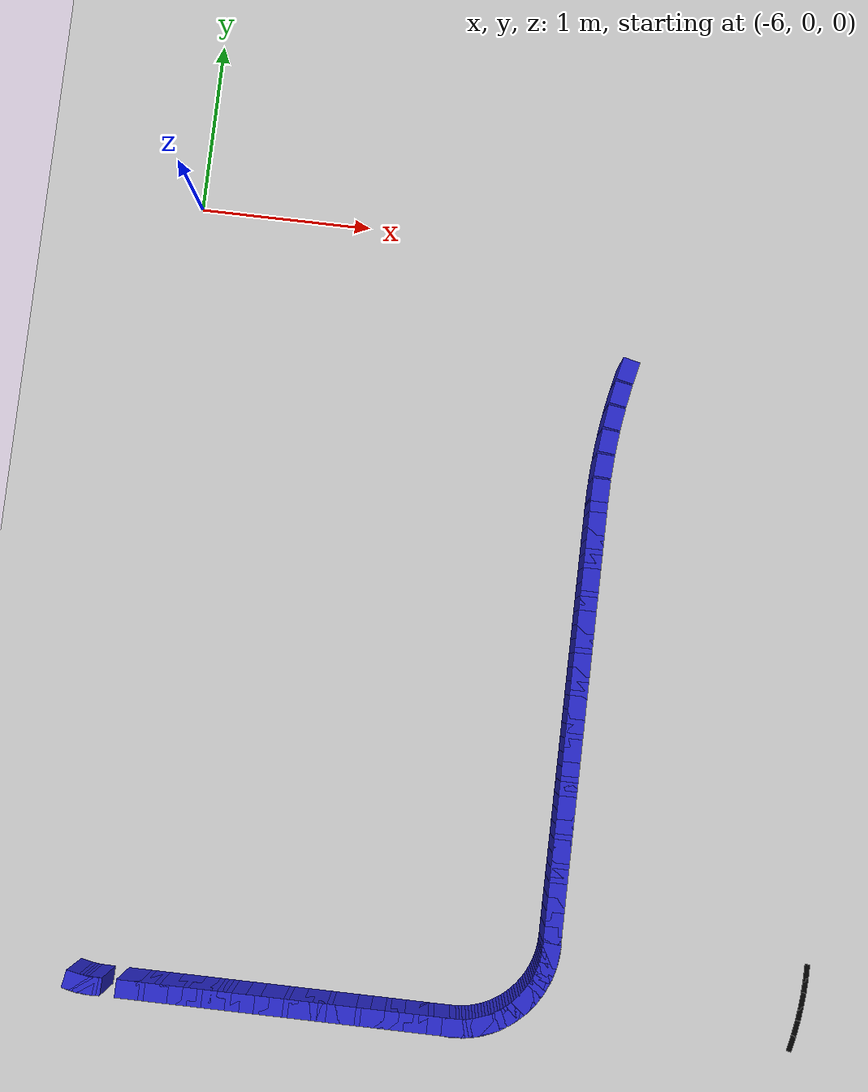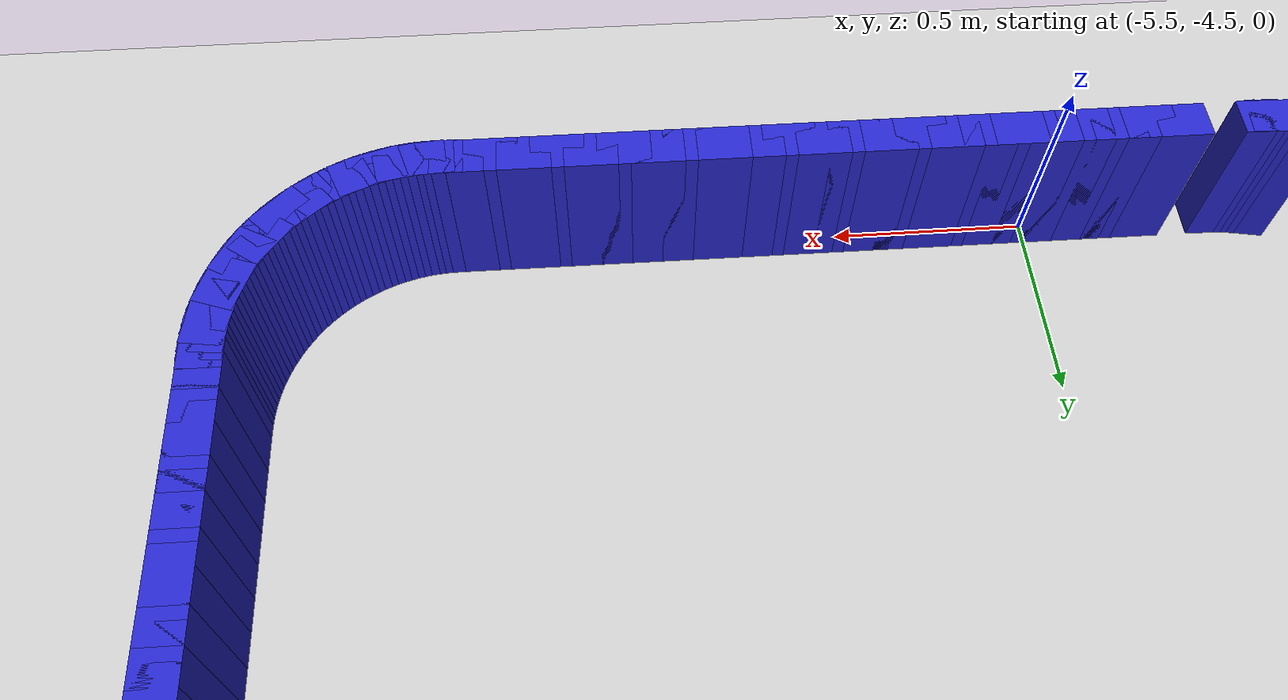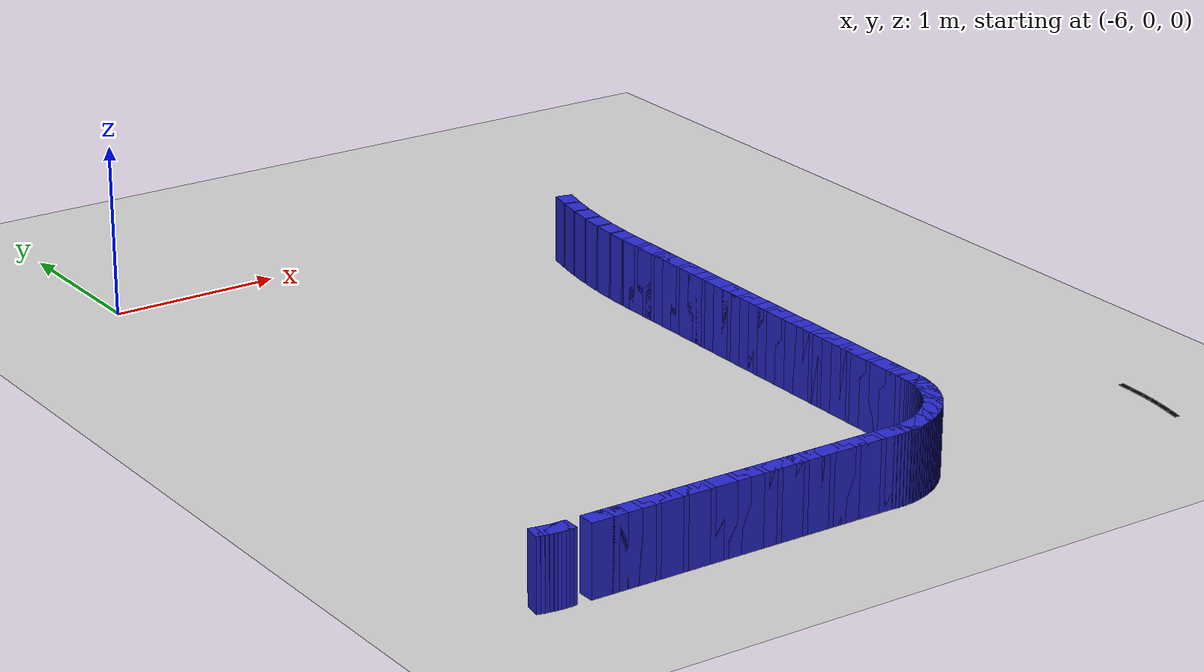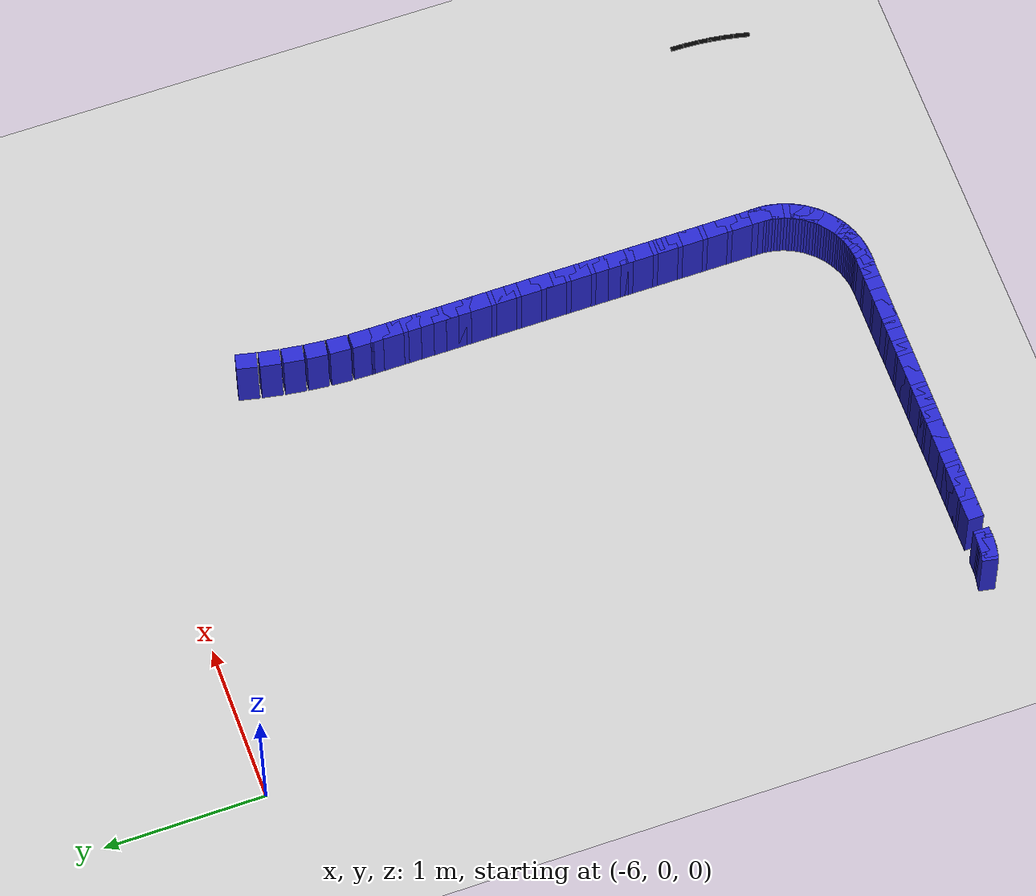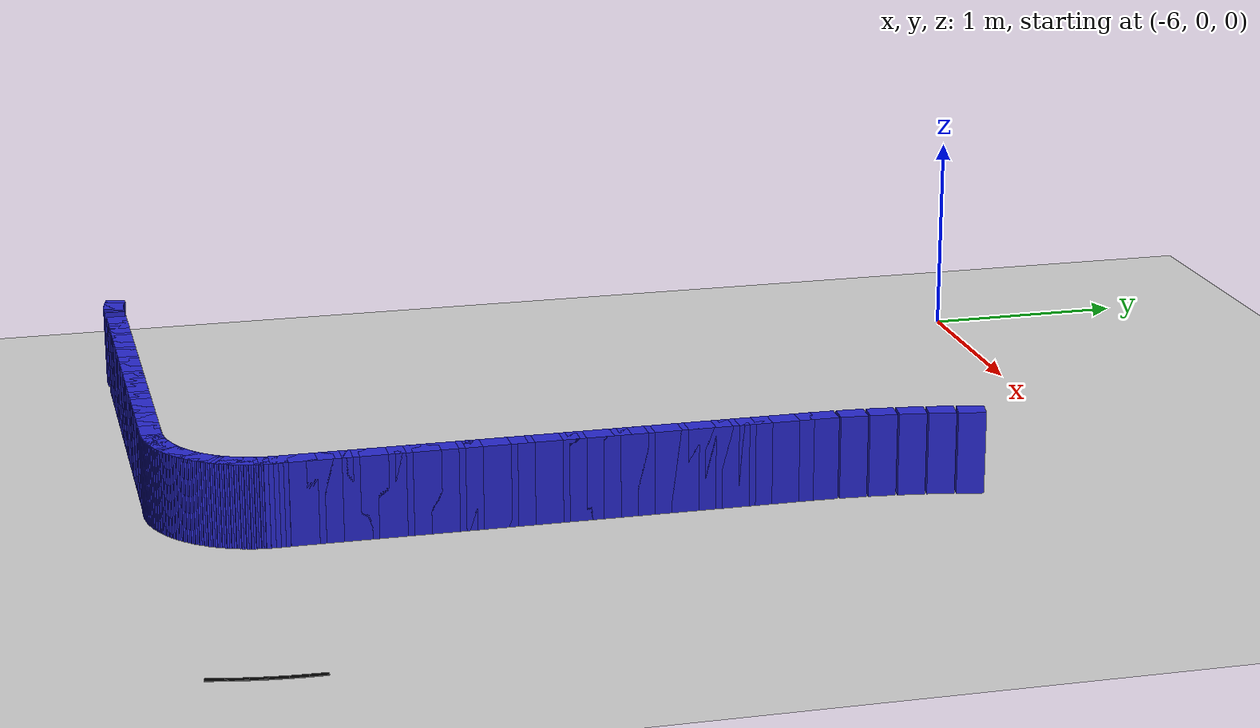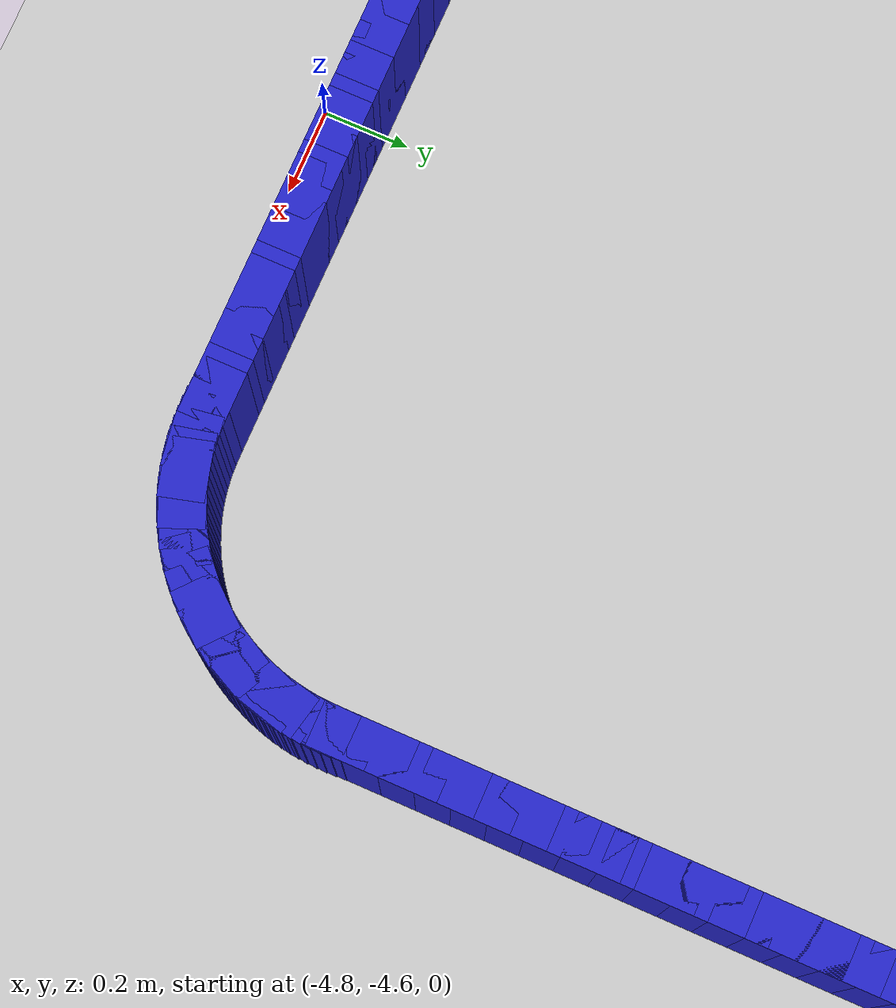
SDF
<sdf version="1.6">
 <world name="new_race_track">
  <include><uri>model://ground_plane</uri></include>
  <include><uri>model://sun</uri></include>
  <model name="iw_84">
   <static>true</static>
   <pose>-6.0901 -4.4914 0.200 0 0 -0.1812</pose>
   <link name="l">
    <collision name="c"><geometry><box><size>0.1305 0.1 0.4</size></box></geometry></collision>
    <visual name="v">
     <geometry><box><size>0.1305 0.1 0.4</size></box></geometry>
     <material><ambient>0.15 0.15 0.8 1</ambient><diffuse>0.15 0.15 0.8 1</diffuse></material>
    </visual>
   </link>
  </model>
  <model name="iw_85">
   <static>true</static>
   <pose>-6.0702 -4.4946 0.200 0 0 -0.1410</pose>
   <link name="l">
    <collision name="c"><geometry><box><size>0.1305 0.1 0.4</size></box></geometry></collision>
    <visual name="v">
     <geometry><box><size>0.1305 0.1 0.4</size></box></geometry>
     <material><ambient>0.15 0.15 0.8 1</ambient><diffuse>0.15 0.15 0.8 1</diffuse></material>
    </visual>
   </link>
  </model>
  <model name="iw_86">
   <static>true</static>
   <pose>-6.0502 -4.4971 0.200 0 0 -0.1007</pose>
   <link name="l">
    <collision name="c"><geometry><box><size>0.1305 0.1 0.4</size></box></geometry></collision>
    <visual name="v">
     <geometry><box><size>0.1305 0.1 0.4</size></box></geometry>
     <material><ambient>0.15 0.15 0.8 1</ambient><diffuse>0.15 0.15 0.8 1</diffuse></material>
    </visual>
   </link>
  </model>
  <model name="iw_87">
   <static>true</static>
   <pose>-6.0302 -4.4987 0.200 0 0 -0.0604</pose>
   <link name="l">
    <collision name="c"><geometry><box><size>0.1305 0.1 0.4</size></box></geometry></collision>
    <visual name="v">
     <geometry><box><size>0.1305 0.1 0.4</size></box></geometry>
     <material><ambient>0.15 0.15 0.8 1</ambient><diffuse>0.15 0.15 0.8 1</diffuse></material>
    </visual>
   </link>
  </model>
  <model name="iw_88">
   <static>true</static>
   <pose>-6.0101 -4.4995 0.200 0 0 -0.0201</pose>
   <link name="l">
    <collision name="c"><geometry><box><size>0.1305 0.1 0.4</size></box></geometry></collision>
    <visual name="v">
     <geometry><box><size>0.1305 0.1 0.4</size></box></geometry>
     <material><ambient>0.15 0.15 0.8 1</ambient><diffuse>0.15 0.15 0.8 1</diffuse></material>
    </visual>
   </link>
  </model>
  <model name="iw_91">
   <static>true</static>
   <pose>-5.8000 -4.5000 0.200 0 0 0.0000</pose>
   <link name="l">
    <collision name="c"><geometry><box><size>0.1300 0.1 0.4</size></box></geometry></collision>
    <visual name="v">
     <geometry><box><size>0.1300 0.1 0.4</size></box></geometry>
     <material><ambient>0.15 0.15 0.8 1</ambient><diffuse>0.15 0.15 0.8 1</diffuse></material>
    </visual>
   </link>
  </model>
  <model name="iw_92">
   <static>true</static>
   <pose>-5.7200 -4.5000 0.200 0 0 0.0000</pose>
   <link name="l">
    <collision name="c"><geometry><box><size>0.1300 0.1 0.4</size></box></geometry></collision>
    <visual name="v">
     <geometry><box><size>0.1300 0.1 0.4</size></box></geometry>
     <material><ambient>0.15 0.15 0.8 1</ambient><diffuse>0.15 0.15 0.8 1</diffuse></material>
    </visual>
   </link>
  </model>
  <model name="iw_93">
   <static>true</static>
   <pose>-5.6400 -4.5000 0.200 0 0 0.0000</pose>
   <link name="l">
    <collision name="c"><geometry><box><size>0.1300 0.1 0.4</size></box></geometry></collision>
    <visual name="v">
     <geometry><box><size>0.1300 0.1 0.4</size></box></geometry>
     <material><ambient>0.15 0.15 0.8 1</ambient><diffuse>0.15 0.15 0.8 1</diffuse></material>
    </visual>
   </link>
  </model>
  <model name="iw_94">
   <static>true</static>
   <pose>-5.5600 -4.5000 0.200 0 0 0.0000</pose>
   <link name="l">
    <collision name="c"><geometry><box><size>0.1300 0.1 0.4</size></box></geometry></collision>
    <visual name="v">
     <geometry><box><size>0.1300 0.1 0.4</size></box></geometry>
     <material><ambient>0.15 0.15 0.8 1</ambient><diffuse>0.15 0.15 0.8 1</diffuse></material>
    </visual>
   </link>
  </model>
  <model name="iw_95">
   <static>true</static>
   <pose>-5.4800 -4.5000 0.200 0 0 0.0000</pose>
   <link name="l">
    <collision name="c"><geometry><box><size>0.1300 0.1 0.4</size></box></geometry></collision>
    <visual name="v">
     <geometry><box><size>0.1300 0.1 0.4</size></box></geometry>
     <material><ambient>0.15 0.15 0.8 1</ambient><diffuse>0.15 0.15 0.8 1</diffuse></material>
    </visual>
   </link>
  </model>
  <model name="iw_96">
   <static>true</static>
   <pose>-5.4000 -4.5000 0.200 0 0 0.0000</pose>
   <link name="l">
    <collision name="c"><geometry><box><size>0.1300 0.1 0.4</size></box></geometry></collision>
    <visual name="v">
     <geometry><box><size>0.1300 0.1 0.4</size></box></geometry>
     <material><ambient>0.15 0.15 0.8 1</ambient><diffuse>0.15 0.15 0.8 1</diffuse></material>
    </visual>
   </link>
  </model>
  <model name="iw_97">
   <static>true</static>
   <pose>-5.3200 -4.5000 0.200 0 0 0.0000</pose>
   <link name="l">
    <collision name="c"><geometry><box><size>0.1300 0.1 0.4</size></box></geometry></collision>
    <visual name="v">
     <geometry><box><size>0.1300 0.1 0.4</size></box></geometry>
     <material><ambient>0.15 0.15 0.8 1</ambient><diffuse>0.15 0.15 0.8 1</diffuse></material>
    </visual>
   </link>
  </model>
  <model name="iw_98">
   <static>true</static>
   <pose>-5.2400 -4.5000 0.200 0 0 0.0000</pose>
   <link name="l">
    <collision name="c"><geometry><box><size>0.1300 0.1 0.4</size></box></geometry></collision>
    <visual name="v">
     <geometry><box><size>0.1300 0.1 0.4</size></box></geometry>
     <material><ambient>0.15 0.15 0.8 1</ambient><diffuse>0.15 0.15 0.8 1</diffuse></material>
    </visual>
   </link>
  </model>
  <model name="iw_99">
   <static>true</static>
   <pose>-5.1600 -4.5000 0.200 0 0 0.0000</pose>
   <link name="l">
    <collision name="c"><geometry><box><size>0.1300 0.1 0.4</size></box></geometry></collision>
    <visual name="v">
     <geometry><box><size>0.1300 0.1 0.4</size></box></geometry>
     <material><ambient>0.15 0.15 0.8 1</ambient><diffuse>0.15 0.15 0.8 1</diffuse></material>
    </visual>
   </link>
  </model>
  <model name="iw_100">
   <static>true</static>
   <pose>-5.0800 -4.5000 0.200 0 0 0.0000</pose>
   <link name="l">
    <collision name="c"><geometry><box><size>0.1300 0.1 0.4</size></box></geometry></collision>
    <visual name="v">
     <geometry><box><size>0.1300 0.1 0.4</size></box></geometry>
     <material><ambient>0.15 0.15 0.8 1</ambient><diffuse>0.15 0.15 0.8 1</diffuse></material>
    </visual>
   </link>
  </model>
  <model name="iw_101">
   <static>true</static>
   <pose>-5.0000 -4.5000 0.200 0 0 0.0000</pose>
   <link name="l">
    <collision name="c"><geometry><box><size>0.1300 0.1 0.4</size></box></geometry></collision>
    <visual name="v">
     <geometry><box><size>0.1300 0.1 0.4</size></box></geometry>
     <material><ambient>0.15 0.15 0.8 1</ambient><diffuse>0.15 0.15 0.8 1</diffuse></material>
    </visual>
   </link>
  </model>
  <model name="iw_102">
   <static>true</static>
   <pose>-4.9200 -4.5000 0.200 0 0 0.0000</pose>
   <link name="l">
    <collision name="c"><geometry><box><size>0.1300 0.1 0.4</size></box></geometry></collision>
    <visual name="v">
     <geometry><box><size>0.1300 0.1 0.4</size></box></geometry>
     <material><ambient>0.15 0.15 0.8 1</ambient><diffuse>0.15 0.15 0.8 1</diffuse></material>
    </visual>
   </link>
  </model>
  <model name="iw_103">
   <static>true</static>
   <pose>-4.8400 -4.5000 0.200 0 0 0.0000</pose>
   <link name="l">
    <collision name="c"><geometry><box><size>0.1300 0.1 0.4</size></box></geometry></collision>
    <visual name="v">
     <geometry><box><size>0.1300 0.1 0.4</size></box></geometry>
     <material><ambient>0.15 0.15 0.8 1</ambient><diffuse>0.15 0.15 0.8 1</diffuse></material>
    </visual>
   </link>
  </model>
  <model name="iw_104">
   <static>true</static>
   <pose>-4.7600 -4.5000 0.200 0 0 0.0000</pose>
   <link name="l">
    <collision name="c"><geometry><box><size>0.1300 0.1 0.4</size></box></geometry></collision>
    <visual name="v">
     <geometry><box><size>0.1300 0.1 0.4</size></box></geometry>
     <material><ambient>0.15 0.15 0.8 1</ambient><diffuse>0.15 0.15 0.8 1</diffuse></material>
    </visual>
   </link>
  </model>
  <model name="iw_105">
   <static>true</static>
   <pose>-4.6800 -4.5000 0.200 0 0 0.0000</pose>
   <link name="l">
    <collision name="c"><geometry><box><size>0.1300 0.1 0.4</size></box></geometry></collision>
    <visual name="v">
     <geometry><box><size>0.1300 0.1 0.4</size></box></geometry>
     <material><ambient>0.15 0.15 0.8 1</ambient><diffuse>0.15 0.15 0.8 1</diffuse></material>
    </visual>
   </link>
  </model>
  <model name="iw_106">
   <static>true</static>
   <pose>-4.6000 -4.5000 0.200 0 0 0.0000</pose>
   <link name="l">
    <collision name="c"><geometry><box><size>0.1300 0.1 0.4</size></box></geometry></collision>
    <visual name="v">
     <geometry><box><size>0.1300 0.1 0.4</size></box></geometry>
     <material><ambient>0.15 0.15 0.8 1</ambient><diffuse>0.15 0.15 0.8 1</diffuse></material>
    </visual>
   </link>
  </model>
  <model name="iw_107">
   <static>true</static>
   <pose>-4.5200 -4.5000 0.200 0 0 0.0000</pose>
   <link name="l">
    <collision name="c"><geometry><box><size>0.1300 0.1 0.4</size></box></geometry></collision>
    <visual name="v">
     <geometry><box><size>0.1300 0.1 0.4</size></box></geometry>
     <material><ambient>0.15 0.15 0.8 1</ambient><diffuse>0.15 0.15 0.8 1</diffuse></material>
    </visual>
   </link>
  </model>
  <model name="iw_108">
   <static>true</static>
   <pose>-4.4400 -4.5000 0.200 0 0 0.0000</pose>
   <link name="l">
    <collision name="c"><geometry><box><size>0.1300 0.1 0.4</size></box></geometry></collision>
    <visual name="v">
     <geometry><box><size>0.1300 0.1 0.4</size></box></geometry>
     <material><ambient>0.15 0.15 0.8 1</ambient><diffuse>0.15 0.15 0.8 1</diffuse></material>
    </visual>
   </link>
  </model>
  <model name="iw_109">
   <static>true</static>
   <pose>-4.3600 -4.5000 0.200 0 0 0.0000</pose>
   <link name="l">
    <collision name="c"><geometry><box><size>0.1300 0.1 0.4</size></box></geometry></collision>
    <visual name="v">
     <geometry><box><size>0.1300 0.1 0.4</size></box></geometry>
     <material><ambient>0.15 0.15 0.8 1</ambient><diffuse>0.15 0.15 0.8 1</diffuse></material>
    </visual>
   </link>
  </model>
  <model name="iw_110">
   <static>true</static>
   <pose>-4.2800 -4.5000 0.200 0 0 0.0000</pose>
   <link name="l">
    <collision name="c"><geometry><box><size>0.1300 0.1 0.4</size></box></geometry></collision>
    <visual name="v">
     <geometry><box><size>0.1300 0.1 0.4</size></box></geometry>
     <material><ambient>0.15 0.15 0.8 1</ambient><diffuse>0.15 0.15 0.8 1</diffuse></material>
    </visual>
   </link>
  </model>
  <model name="iw_111">
   <static>true</static>
   <pose>-4.2000 -4.5000 0.200 0 0 0.0000</pose>
   <link name="l">
    <collision name="c"><geometry><box><size>0.1300 0.1 0.4</size></box></geometry></collision>
    <visual name="v">
     <geometry><box><size>0.1300 0.1 0.4</size></box></geometry>
     <material><ambient>0.15 0.15 0.8 1</ambient><diffuse>0.15 0.15 0.8 1</diffuse></material>
    </visual>
   </link>
  </model>
  <model name="iw_112">
   <static>true</static>
   <pose>-4.1200 -4.5000 0.200 0 0 0.0000</pose>
   <link name="l">
    <collision name="c"><geometry><box><size>0.1300 0.1 0.4</size></box></geometry></collision>
    <visual name="v">
     <geometry><box><size>0.1300 0.1 0.4</size></box></geometry>
     <material><ambient>0.15 0.15 0.8 1</ambient><diffuse>0.15 0.15 0.8 1</diffuse></material>
    </visual>
   </link>
  </model>
  <model name="iw_113">
   <static>true</static>
   <pose>-4.0400 -4.5000 0.200 0 0 0.0000</pose>
   <link name="l">
    <collision name="c"><geometry><box><size>0.1300 0.1 0.4</size></box></geometry></collision>
    <visual name="v">
     <geometry><box><size>0.1300 0.1 0.4</size></box></geometry>
     <material><ambient>0.15 0.15 0.8 1</ambient><diffuse>0.15 0.15 0.8 1</diffuse></material>
    </visual>
   </link>
  </model>
  <model name="iw_114">
   <static>true</static>
   <pose>-3.9899 -4.4995 0.200 0 0 0.0201</pose>
   <link name="l">
    <collision name="c"><geometry><box><size>0.1305 0.1 0.4</size></box></geometry></collision>
    <visual name="v">
     <geometry><box><size>0.1305 0.1 0.4</size></box></geometry>
     <material><ambient>0.15 0.15 0.8 1</ambient><diffuse>0.15 0.15 0.8 1</diffuse></material>
    </visual>
   </link>
  </model>
  <model name="iw_115">
   <static>true</static>
   <pose>-3.9698 -4.4987 0.200 0 0 0.0604</pose>
   <link name="l">
    <collision name="c"><geometry><box><size>0.1305 0.1 0.4</size></box></geometry></collision>
    <visual name="v">
     <geometry><box><size>0.1305 0.1 0.4</size></box></geometry>
     <material><ambient>0.15 0.15 0.8 1</ambient><diffuse>0.15 0.15 0.8 1</diffuse></material>
    </visual>
   </link>
  </model>
  <model name="iw_116">
   <static>true</static>
   <pose>-3.9498 -4.4971 0.200 0 0 0.1007</pose>
   <link name="l">
    <collision name="c"><geometry><box><size>0.1305 0.1 0.4</size></box></geometry></collision>
    <visual name="v">
     <geometry><box><size>0.1305 0.1 0.4</size></box></geometry>
     <material><ambient>0.15 0.15 0.8 1</ambient><diffuse>0.15 0.15 0.8 1</diffuse></material>
    </visual>
   </link>
  </model>
  <model name="iw_117">
   <static>true</static>
   <pose>-3.9298 -4.4946 0.200 0 0 0.1410</pose>
   <link name="l">
    <collision name="c"><geometry><box><size>0.1305 0.1 0.4</size></box></geometry></collision>
    <visual name="v">
     <geometry><box><size>0.1305 0.1 0.4</size></box></geometry>
     <material><ambient>0.15 0.15 0.8 1</ambient><diffuse>0.15 0.15 0.8 1</diffuse></material>
    </visual>
   </link>
  </model>
  <model name="iw_118">
   <static>true</static>
   <pose>-3.9099 -4.4914 0.200 0 0 0.1812</pose>
   <link name="l">
    <collision name="c"><geometry><box><size>0.1305 0.1 0.4</size></box></geometry></collision>
    <visual name="v">
     <geometry><box><size>0.1305 0.1 0.4</size></box></geometry>
     <material><ambient>0.15 0.15 0.8 1</ambient><diffuse>0.15 0.15 0.8 1</diffuse></material>
    </visual>
   </link>
  </model>
  <model name="iw_119">
   <static>true</static>
   <pose>-3.8902 -4.4874 0.200 0 0 0.2215</pose>
   <link name="l">
    <collision name="c"><geometry><box><size>0.1305 0.1 0.4</size></box></geometry></collision>
    <visual name="v">
     <geometry><box><size>0.1305 0.1 0.4</size></box></geometry>
     <material><ambient>0.15 0.15 0.8 1</ambient><diffuse>0.15 0.15 0.8 1</diffuse></material>
    </visual>
   </link>
  </model>
  <model name="iw_120">
   <static>true</static>
   <pose>-3.8707 -4.4826 0.200 0 0 0.2618</pose>
   <link name="l">
    <collision name="c"><geometry><box><size>0.1305 0.1 0.4</size></box></geometry></collision>
    <visual name="v">
     <geometry><box><size>0.1305 0.1 0.4</size></box></geometry>
     <material><ambient>0.15 0.15 0.8 1</ambient><diffuse>0.15 0.15 0.8 1</diffuse></material>
    </visual>
   </link>
  </model>
  <model name="iw_121">
   <static>true</static>
   <pose>-3.8514 -4.4770 0.200 0 0 0.3021</pose>
   <link name="l">
    <collision name="c"><geometry><box><size>0.1305 0.1 0.4</size></box></geometry></collision>
    <visual name="v">
     <geometry><box><size>0.1305 0.1 0.4</size></box></geometry>
     <material><ambient>0.15 0.15 0.8 1</ambient><diffuse>0.15 0.15 0.8 1</diffuse></material>
    </visual>
   </link>
  </model>
  <model name="iw_122">
   <static>true</static>
   <pose>-3.8323 -4.4706 0.200 0 0 0.3424</pose>
   <link name="l">
    <collision name="c"><geometry><box><size>0.1305 0.1 0.4</size></box></geometry></collision>
    <visual name="v">
     <geometry><box><size>0.1305 0.1 0.4</size></box></geometry>
     <material><ambient>0.15 0.15 0.8 1</ambient><diffuse>0.15 0.15 0.8 1</diffuse></material>
    </visual>
   </link>
  </model>
  <model name="iw_123">
   <static>true</static>
   <pose>-3.8135 -4.4635 0.200 0 0 0.3826</pose>
   <link name="l">
    <collision name="c"><geometry><box><size>0.1305 0.1 0.4</size></box></geometry></collision>
    <visual name="v">
     <geometry><box><size>0.1305 0.1 0.4</size></box></geometry>
     <material><ambient>0.15 0.15 0.8 1</ambient><diffuse>0.15 0.15 0.8 1</diffuse></material>
    </visual>
   </link>
  </model>
  <model name="iw_124">
   <static>true</static>
   <pose>-3.7950 -4.4556 0.200 0 0 0.4229</pose>
   <link name="l">
    <collision name="c"><geometry><box><size>0.1305 0.1 0.4</size></box></geometry></collision>
    <visual name="v">
     <geometry><box><size>0.1305 0.1 0.4</size></box></geometry>
     <material><ambient>0.15 0.15 0.8 1</ambient><diffuse>0.15 0.15 0.8 1</diffuse></material>
    </visual>
   </link>
  </model>
  <model name="iw_125">
   <static>true</static>
   <pose>-3.7768 -4.4470 0.200 0 0 0.4632</pose>
   <link name="l">
    <collision name="c"><geometry><box><size>0.1305 0.1 0.4</size></box></geometry></collision>
    <visual name="v">
     <geometry><box><size>0.1305 0.1 0.4</size></box></geometry>
     <material><ambient>0.15 0.15 0.8 1</ambient><diffuse>0.15 0.15 0.8 1</diffuse></material>
    </visual>
   </link>
  </model>
  <model name="iw_126">
   <static>true</static>
   <pose>-3.7590 -4.4376 0.200 0 0 0.5035</pose>
   <link name="l">
    <collision name="c"><geometry><box><size>0.1305 0.1 0.4</size></box></geometry></collision>
    <visual name="v">
     <geometry><box><size>0.1305 0.1 0.4</size></box></geometry>
     <material><ambient>0.15 0.15 0.8 1</ambient><diffuse>0.15 0.15 0.8 1</diffuse></material>
    </visual>
   </link>
  </model>
  <model name="iw_127">
   <static>true</static>
   <pose>-3.7415 -4.4275 0.200 0 0 0.5437</pose>
   <link name="l">
    <collision name="c"><geometry><box><size>0.1305 0.1 0.4</size></box></geometry></collision>
    <visual name="v">
     <geometry><box><size>0.1305 0.1 0.4</size></box></geometry>
     <material><ambient>0.15 0.15 0.8 1</ambient><diffuse>0.15 0.15 0.8 1</diffuse></material>
    </visual>
   </link>
  </model>
  <model name="iw_128">
   <static>true</static>
   <pose>-3.7245 -4.4168 0.200 0 0 0.5840</pose>
   <link name="l">
    <collision name="c"><geometry><box><size>0.1305 0.1 0.4</size></box></geometry></collision>
    <visual name="v">
     <geometry><box><size>0.1305 0.1 0.4</size></box></geometry>
     <material><ambient>0.15 0.15 0.8 1</ambient><diffuse>0.15 0.15 0.8 1</diffuse></material>
    </visual>
   </link>
  </model>
  <model name="iw_129">
   <static>true</static>
   <pose>-3.7080 -4.4054 0.200 0 0 0.6243</pose>
   <link name="l">
    <collision name="c"><geometry><box><size>0.1305 0.1 0.4</size></box></geometry></collision>
    <visual name="v">
     <geometry><box><size>0.1305 0.1 0.4</size></box></geometry>
     <material><ambient>0.15 0.15 0.8 1</ambient><diffuse>0.15 0.15 0.8 1</diffuse></material>
    </visual>
   </link>
  </model>
  <model name="iw_130">
   <static>true</static>
   <pose>-3.6919 -4.3933 0.200 0 0 0.6646</pose>
   <link name="l">
    <collision name="c"><geometry><box><size>0.1305 0.1 0.4</size></box></geometry></collision>
    <visual name="v">
     <geometry><box><size>0.1305 0.1 0.4</size></box></geometry>
     <material><ambient>0.15 0.15 0.8 1</ambient><diffuse>0.15 0.15 0.8 1</diffuse></material>
    </visual>
   </link>
  </model>
  <model name="iw_131">
   <static>true</static>
   <pose>-3.6763 -4.3805 0.200 0 0 0.7048</pose>
   <link name="l">
    <collision name="c"><geometry><box><size>0.1305 0.1 0.4</size></box></geometry></collision>
    <visual name="v">
     <geometry><box><size>0.1305 0.1 0.4</size></box></geometry>
     <material><ambient>0.15 0.15 0.8 1</ambient><diffuse>0.15 0.15 0.8 1</diffuse></material>
    </visual>
   </link>
  </model>
  <model name="iw_132">
   <static>true</static>
   <pose>-3.6612 -4.3672 0.200 0 0 0.7451</pose>
   <link name="l">
    <collision name="c"><geometry><box><size>0.1305 0.1 0.4</size></box></geometry></collision>
    <visual name="v">
     <geometry><box><size>0.1305 0.1 0.4</size></box></geometry>
     <material><ambient>0.15 0.15 0.8 1</ambient><diffuse>0.15 0.15 0.8 1</diffuse></material>
    </visual>
   </link>
  </model>
  <model name="iw_133">
   <static>true</static>
   <pose>-3.6467 -4.3533 0.200 0 0 0.7854</pose>
   <link name="l">
    <collision name="c"><geometry><box><size>0.1305 0.1 0.4</size></box></geometry></collision>
    <visual name="v">
     <geometry><box><size>0.1305 0.1 0.4</size></box></geometry>
     <material><ambient>0.15 0.15 0.8 1</ambient><diffuse>0.15 0.15 0.8 1</diffuse></material>
    </visual>
   </link>
  </model>
  <model name="iw_134">
   <static>true</static>
   <pose>-3.6328 -4.3388 0.200 0 0 0.8257</pose>
   <link name="l">
    <collision name="c"><geometry><box><size>0.1305 0.1 0.4</size></box></geometry></collision>
    <visual name="v">
     <geometry><box><size>0.1305 0.1 0.4</size></box></geometry>
     <material><ambient>0.15 0.15 0.8 1</ambient><diffuse>0.15 0.15 0.8 1</diffuse></material>
    </visual>
   </link>
  </model>
  <model name="iw_135">
   <static>true</static>
   <pose>-3.6195 -4.3237 0.200 0 0 0.8660</pose>
   <link name="l">
    <collision name="c"><geometry><box><size>0.1305 0.1 0.4</size></box></geometry></collision>
    <visual name="v">
     <geometry><box><size>0.1305 0.1 0.4</size></box></geometry>
     <material><ambient>0.15 0.15 0.8 1</ambient><diffuse>0.15 0.15 0.8 1</diffuse></material>
    </visual>
   </link>
  </model>
  <model name="iw_136">
   <static>true</static>
   <pose>-3.6067 -4.3081 0.200 0 0 0.9062</pose>
   <link name="l">
    <collision name="c"><geometry><box><size>0.1305 0.1 0.4</size></box></geometry></collision>
    <visual name="v">
     <geometry><box><size>0.1305 0.1 0.4</size></box></geometry>
     <material><ambient>0.15 0.15 0.8 1</ambient><diffuse>0.15 0.15 0.8 1</diffuse></material>
    </visual>
   </link>
  </model>
  <model name="iw_137">
   <static>true</static>
   <pose>-3.5946 -4.2920 0.200 0 0 0.9465</pose>
   <link name="l">
    <collision name="c"><geometry><box><size>0.1305 0.1 0.4</size></box></geometry></collision>
    <visual name="v">
     <geometry><box><size>0.1305 0.1 0.4</size></box></geometry>
     <material><ambient>0.15 0.15 0.8 1</ambient><diffuse>0.15 0.15 0.8 1</diffuse></material>
    </visual>
   </link>
  </model>
  <model name="iw_138">
   <static>true</static>
   <pose>-3.5832 -4.2755 0.200 0 0 0.9868</pose>
   <link name="l">
    <collision name="c"><geometry><box><size>0.1305 0.1 0.4</size></box></geometry></collision>
    <visual name="v">
     <geometry><box><size>0.1305 0.1 0.4</size></box></geometry>
     <material><ambient>0.15 0.15 0.8 1</ambient><diffuse>0.15 0.15 0.8 1</diffuse></material>
    </visual>
   </link>
  </model>
  <model name="iw_139">
   <static>true</static>
   <pose>-3.5725 -4.2585 0.200 0 0 1.0271</pose>
   <link name="l">
    <collision name="c"><geometry><box><size>0.1305 0.1 0.4</size></box></geometry></collision>
    <visual name="v">
     <geometry><box><size>0.1305 0.1 0.4</size></box></geometry>
     <material><ambient>0.15 0.15 0.8 1</ambient><diffuse>0.15 0.15 0.8 1</diffuse></material>
    </visual>
   </link>
  </model>
  <model name="iw_140">
   <static>true</static>
   <pose>-3.5624 -4.2410 0.200 0 0 1.0673</pose>
   <link name="l">
    <collision name="c"><geometry><box><size>0.1305 0.1 0.4</size></box></geometry></collision>
    <visual name="v">
     <geometry><box><size>0.1305 0.1 0.4</size></box></geometry>
     <material><ambient>0.15 0.15 0.8 1</ambient><diffuse>0.15 0.15 0.8 1</diffuse></material>
    </visual>
   </link>
  </model>
  <model name="iw_141">
   <static>true</static>
   <pose>-3.5530 -4.2232 0.200 0 0 1.1076</pose>
   <link name="l">
    <collision name="c"><geometry><box><size>0.1305 0.1 0.4</size></box></geometry></collision>
    <visual name="v">
     <geometry><box><size>0.1305 0.1 0.4</size></box></geometry>
     <material><ambient>0.15 0.15 0.8 1</ambient><diffuse>0.15 0.15 0.8 1</diffuse></material>
    </visual>
   </link>
  </model>
  <model name="iw_142">
   <static>true</static>
   <pose>-3.5444 -4.2050 0.200 0 0 1.1479</pose>
   <link name="l">
    <collision name="c"><geometry><box><size>0.1305 0.1 0.4</size></box></geometry></collision>
    <visual name="v">
     <geometry><box><size>0.1305 0.1 0.4</size></box></geometry>
     <material><ambient>0.15 0.15 0.8 1</ambient><diffuse>0.15 0.15 0.8 1</diffuse></material>
    </visual>
   </link>
  </model>
  <model name="iw_143">
   <static>true</static>
   <pose>-3.5365 -4.1865 0.200 0 0 1.1882</pose>
   <link name="l">
    <collision name="c"><geometry><box><size>0.1305 0.1 0.4</size></box></geometry></collision>
    <visual name="v">
     <geometry><box><size>0.1305 0.1 0.4</size></box></geometry>
     <material><ambient>0.15 0.15 0.8 1</ambient><diffuse>0.15 0.15 0.8 1</diffuse></material>
    </visual>
   </link>
  </model>
  <model name="iw_144">
   <static>true</static>
   <pose>-3.5294 -4.1677 0.200 0 0 1.2284</pose>
   <link name="l">
    <collision name="c"><geometry><box><size>0.1305 0.1 0.4</size></box></geometry></collision>
    <visual name="v">
     <geometry><box><size>0.1305 0.1 0.4</size></box></geometry>
     <material><ambient>0.15 0.15 0.8 1</ambient><diffuse>0.15 0.15 0.8 1</diffuse></material>
    </visual>
   </link>
  </model>
  <model name="iw_145">
   <static>true</static>
   <pose>-3.5230 -4.1486 0.200 0 0 1.2687</pose>
   <link name="l">
    <collision name="c"><geometry><box><size>0.1305 0.1 0.4</size></box></geometry></collision>
    <visual name="v">
     <geometry><box><size>0.1305 0.1 0.4</size></box></geometry>
     <material><ambient>0.15 0.15 0.8 1</ambient><diffuse>0.15 0.15 0.8 1</diffuse></material>
    </visual>
   </link>
  </model>
  <model name="iw_146">
   <static>true</static>
   <pose>-3.5174 -4.1293 0.200 0 0 1.3090</pose>
   <link name="l">
    <collision name="c"><geometry><box><size>0.1305 0.1 0.4</size></box></geometry></collision>
    <visual name="v">
     <geometry><box><size>0.1305 0.1 0.4</size></box></geometry>
     <material><ambient>0.15 0.15 0.8 1</ambient><diffuse>0.15 0.15 0.8 1</diffuse></material>
    </visual>
   </link>
  </model>
  <model name="iw_147">
   <static>true</static>
   <pose>-3.5126 -4.1098 0.200 0 0 1.3493</pose>
   <link name="l">
    <collision name="c"><geometry><box><size>0.1305 0.1 0.4</size></box></geometry></collision>
    <visual name="v">
     <geometry><box><size>0.1305 0.1 0.4</size></box></geometry>
     <material><ambient>0.15 0.15 0.8 1</ambient><diffuse>0.15 0.15 0.8 1</diffuse></material>
    </visual>
   </link>
  </model>
  <model name="iw_148">
   <static>true</static>
   <pose>-3.5086 -4.0901 0.200 0 0 1.3896</pose>
   <link name="l">
    <collision name="c"><geometry><box><size>0.1305 0.1 0.4</size></box></geometry></collision>
    <visual name="v">
     <geometry><box><size>0.1305 0.1 0.4</size></box></geometry>
     <material><ambient>0.15 0.15 0.8 1</ambient><diffuse>0.15 0.15 0.8 1</diffuse></material>
    </visual>
   </link>
  </model>
  <model name="iw_149">
   <static>true</static>
   <pose>-3.5054 -4.0702 0.200 0 0 1.4298</pose>
   <link name="l">
    <collision name="c"><geometry><box><size>0.1305 0.1 0.4</size></box></geometry></collision>
    <visual name="v">
     <geometry><box><size>0.1305 0.1 0.4</size></box></geometry>
     <material><ambient>0.15 0.15 0.8 1</ambient><diffuse>0.15 0.15 0.8 1</diffuse></material>
    </visual>
   </link>
  </model>
  <model name="iw_150">
   <static>true</static>
   <pose>-3.5029 -4.0502 0.200 0 0 1.4701</pose>
   <link name="l">
    <collision name="c"><geometry><box><size>0.1305 0.1 0.4</size></box></geometry></collision>
    <visual name="v">
     <geometry><box><size>0.1305 0.1 0.4</size></box></geometry>
     <material><ambient>0.15 0.15 0.8 1</ambient><diffuse>0.15 0.15 0.8 1</diffuse></material>
    </visual>
   </link>
  </model>
  <model name="iw_151">
   <static>true</static>
   <pose>-3.5013 -4.0302 0.200 0 0 1.5104</pose>
   <link name="l">
    <collision name="c"><geometry><box><size>0.1305 0.1 0.4</size></box></geometry></collision>
    <visual name="v">
     <geometry><box><size>0.1305 0.1 0.4</size></box></geometry>
     <material><ambient>0.15 0.15 0.8 1</ambient><diffuse>0.15 0.15 0.8 1</diffuse></material>
    </visual>
   </link>
  </model>
  <model name="iw_152">
   <static>true</static>
   <pose>-3.5005 -4.0101 0.200 0 0 1.5507</pose>
   <link name="l">
    <collision name="c"><geometry><box><size>0.1305 0.1 0.4</size></box></geometry></collision>
    <visual name="v">
     <geometry><box><size>0.1305 0.1 0.4</size></box></geometry>
     <material><ambient>0.15 0.15 0.8 1</ambient><diffuse>0.15 0.15 0.8 1</diffuse></material>
    </visual>
   </link>
  </model>
  <model name="iw_153">
   <static>true</static>
   <pose>-3.5000 -3.9600 0.200 0 0 1.5708</pose>
   <link name="l">
    <collision name="c"><geometry><box><size>0.1300 0.1 0.4</size></box></geometry></collision>
    <visual name="v">
     <geometry><box><size>0.1300 0.1 0.4</size></box></geometry>
     <material><ambient>0.15 0.15 0.8 1</ambient><diffuse>0.15 0.15 0.8 1</diffuse></material>
    </visual>
   </link>
  </model>
  <model name="iw_154">
   <static>true</static>
   <pose>-3.5000 -3.8800 0.200 0 0 1.5708</pose>
   <link name="l">
    <collision name="c"><geometry><box><size>0.1300 0.1 0.4</size></box></geometry></collision>
    <visual name="v">
     <geometry><box><size>0.1300 0.1 0.4</size></box></geometry>
     <material><ambient>0.15 0.15 0.8 1</ambient><diffuse>0.15 0.15 0.8 1</diffuse></material>
    </visual>
   </link>
  </model>
  <model name="iw_155">
   <static>true</static>
   <pose>-3.5000 -3.8000 0.200 0 0 1.5708</pose>
   <link name="l">
    <collision name="c"><geometry><box><size>0.1300 0.1 0.4</size></box></geometry></collision>
    <visual name="v">
     <geometry><box><size>0.1300 0.1 0.4</size></box></geometry>
     <material><ambient>0.15 0.15 0.8 1</ambient><diffuse>0.15 0.15 0.8 1</diffuse></material>
    </visual>
   </link>
  </model>
  <model name="iw_156">
   <static>true</static>
   <pose>-3.5000 -3.7200 0.200 0 0 1.5708</pose>
   <link name="l">
    <collision name="c"><geometry><box><size>0.1300 0.1 0.4</size></box></geometry></collision>
    <visual name="v">
     <geometry><box><size>0.1300 0.1 0.4</size></box></geometry>
     <material><ambient>0.15 0.15 0.8 1</ambient><diffuse>0.15 0.15 0.8 1</diffuse></material>
    </visual>
   </link>
  </model>
  <model name="iw_157">
   <static>true</static>
   <pose>-3.5000 -3.6400 0.200 0 0 1.5708</pose>
   <link name="l">
    <collision name="c"><geometry><box><size>0.1300 0.1 0.4</size></box></geometry></collision>
    <visual name="v">
     <geometry><box><size>0.1300 0.1 0.4</size></box></geometry>
     <material><ambient>0.15 0.15 0.8 1</ambient><diffuse>0.15 0.15 0.8 1</diffuse></material>
    </visual>
   </link>
  </model>
  <model name="iw_158">
   <static>true</static>
   <pose>-3.5000 -3.5600 0.200 0 0 1.5708</pose>
   <link name="l">
    <collision name="c"><geometry><box><size>0.1300 0.1 0.4</size></box></geometry></collision>
    <visual name="v">
     <geometry><box><size>0.1300 0.1 0.4</size></box></geometry>
     <material><ambient>0.15 0.15 0.8 1</ambient><diffuse>0.15 0.15 0.8 1</diffuse></material>
    </visual>
   </link>
  </model>
  <model name="iw_159">
   <static>true</static>
   <pose>-3.5000 -3.4800 0.200 0 0 1.5708</pose>
   <link name="l">
    <collision name="c"><geometry><box><size>0.1300 0.1 0.4</size></box></geometry></collision>
    <visual name="v">
     <geometry><box><size>0.1300 0.1 0.4</size></box></geometry>
     <material><ambient>0.15 0.15 0.8 1</ambient><diffuse>0.15 0.15 0.8 1</diffuse></material>
    </visual>
   </link>
  </model>
  <model name="iw_160">
   <static>true</static>
   <pose>-3.5000 -3.4000 0.200 0 0 1.5708</pose>
   <link name="l">
    <collision name="c"><geometry><box><size>0.1300 0.1 0.4</size></box></geometry></collision>
    <visual name="v">
     <geometry><box><size>0.1300 0.1 0.4</size></box></geometry>
     <material><ambient>0.15 0.15 0.8 1</ambient><diffuse>0.15 0.15 0.8 1</diffuse></material>
    </visual>
   </link>
  </model>
  <model name="iw_161">
   <static>true</static>
   <pose>-3.5000 -3.3200 0.200 0 0 1.5708</pose>
   <link name="l">
    <collision name="c"><geometry><box><size>0.1300 0.1 0.4</size></box></geometry></collision>
    <visual name="v">
     <geometry><box><size>0.1300 0.1 0.4</size></box></geometry>
     <material><ambient>0.15 0.15 0.8 1</ambient><diffuse>0.15 0.15 0.8 1</diffuse></material>
    </visual>
   </link>
  </model>
  <model name="iw_162">
   <static>true</static>
   <pose>-3.5000 -3.2400 0.200 0 0 1.5708</pose>
   <link name="l">
    <collision name="c"><geometry><box><size>0.1300 0.1 0.4</size></box></geometry></collision>
    <visual name="v">
     <geometry><box><size>0.1300 0.1 0.4</size></box></geometry>
     <material><ambient>0.15 0.15 0.8 1</ambient><diffuse>0.15 0.15 0.8 1</diffuse></material>
    </visual>
   </link>
  </model>
  <model name="iw_163">
   <static>true</static>
   <pose>-3.5000 -3.1600 0.200 0 0 1.5708</pose>
   <link name="l">
    <collision name="c"><geometry><box><size>0.1300 0.1 0.4</size></box></geometry></collision>
    <visual name="v">
     <geometry><box><size>0.1300 0.1 0.4</size></box></geometry>
     <material><ambient>0.15 0.15 0.8 1</ambient><diffuse>0.15 0.15 0.8 1</diffuse></material>
    </visual>
   </link>
  </model>
  <model name="iw_164">
   <static>true</static>
   <pose>-3.5000 -3.0800 0.200 0 0 1.5708</pose>
   <link name="l">
    <collision name="c"><geometry><box><size>0.1300 0.1 0.4</size></box></geometry></collision>
    <visual name="v">
     <geometry><box><size>0.1300 0.1 0.4</size></box></geometry>
     <material><ambient>0.15 0.15 0.8 1</ambient><diffuse>0.15 0.15 0.8 1</diffuse></material>
    </visual>
   </link>
  </model>
  <model name="iw_165">
   <static>true</static>
   <pose>-3.5000 -3.0000 0.200 0 0 1.5708</pose>
   <link name="l">
    <collision name="c"><geometry><box><size>0.1300 0.1 0.4</size></box></geometry></collision>
    <visual name="v">
     <geometry><box><size>0.1300 0.1 0.4</size></box></geometry>
     <material><ambient>0.15 0.15 0.8 1</ambient><diffuse>0.15 0.15 0.8 1</diffuse></material>
    </visual>
   </link>
  </model>
  <model name="iw_166">
   <static>true</static>
   <pose>-3.5000 -2.9200 0.200 0 0 1.5708</pose>
   <link name="l">
    <collision name="c"><geometry><box><size>0.1300 0.1 0.4</size></box></geometry></collision>
    <visual name="v">
     <geometry><box><size>0.1300 0.1 0.4</size></box></geometry>
     <material><ambient>0.15 0.15 0.8 1</ambient><diffuse>0.15 0.15 0.8 1</diffuse></material>
    </visual>
   </link>
  </model>
  <model name="iw_167">
   <static>true</static>
   <pose>-3.5000 -2.8400 0.200 0 0 1.5708</pose>
   <link name="l">
    <collision name="c"><geometry><box><size>0.1300 0.1 0.4</size></box></geometry></collision>
    <visual name="v">
     <geometry><box><size>0.1300 0.1 0.4</size></box></geometry>
     <material><ambient>0.15 0.15 0.8 1</ambient><diffuse>0.15 0.15 0.8 1</diffuse></material>
    </visual>
   </link>
  </model>
  <model name="iw_168">
   <static>true</static>
   <pose>-3.5000 -2.7600 0.200 0 0 1.5708</pose>
   <link name="l">
    <collision name="c"><geometry><box><size>0.1300 0.1 0.4</size></box></geometry></collision>
    <visual name="v">
     <geometry><box><size>0.1300 0.1 0.4</size></box></geometry>
     <material><ambient>0.15 0.15 0.8 1</ambient><diffuse>0.15 0.15 0.8 1</diffuse></material>
    </visual>
   </link>
  </model>
  <model name="iw_169">
   <static>true</static>
   <pose>-3.5000 -2.6800 0.200 0 0 1.5708</pose>
   <link name="l">
    <collision name="c"><geometry><box><size>0.1300 0.1 0.4</size></box></geometry></collision>
    <visual name="v">
     <geometry><box><size>0.1300 0.1 0.4</size></box></geometry>
     <material><ambient>0.15 0.15 0.8 1</ambient><diffuse>0.15 0.15 0.8 1</diffuse></material>
    </visual>
   </link>
  </model>
  <model name="iw_170">
   <static>true</static>
   <pose>-3.5000 -2.6000 0.200 0 0 1.5708</pose>
   <link name="l">
    <collision name="c"><geometry><box><size>0.1300 0.1 0.4</size></box></geometry></collision>
    <visual name="v">
     <geometry><box><size>0.1300 0.1 0.4</size></box></geometry>
     <material><ambient>0.15 0.15 0.8 1</ambient><diffuse>0.15 0.15 0.8 1</diffuse></material>
    </visual>
   </link>
  </model>
  <model name="iw_171">
   <static>true</static>
   <pose>-3.5000 -2.5200 0.200 0 0 1.5708</pose>
   <link name="l">
    <collision name="c"><geometry><box><size>0.1300 0.1 0.4</size></box></geometry></collision>
    <visual name="v">
     <geometry><box><size>0.1300 0.1 0.4</size></box></geometry>
     <material><ambient>0.15 0.15 0.8 1</ambient><diffuse>0.15 0.15 0.8 1</diffuse></material>
    </visual>
   </link>
  </model>
  <model name="iw_172">
   <static>true</static>
   <pose>-3.5000 -2.4400 0.200 0 0 1.5708</pose>
   <link name="l">
    <collision name="c"><geometry><box><size>0.1300 0.1 0.4</size></box></geometry></collision>
    <visual name="v">
     <geometry><box><size>0.1300 0.1 0.4</size></box></geometry>
     <material><ambient>0.15 0.15 0.8 1</ambient><diffuse>0.15 0.15 0.8 1</diffuse></material>
    </visual>
   </link>
  </model>
  <model name="iw_173">
   <static>true</static>
   <pose>-3.5000 -2.3600 0.200 0 0 1.5708</pose>
   <link name="l">
    <collision name="c"><geometry><box><size>0.1300 0.1 0.4</size></box></geometry></collision>
    <visual name="v">
     <geometry><box><size>0.1300 0.1 0.4</size></box></geometry>
     <material><ambient>0.15 0.15 0.8 1</ambient><diffuse>0.15 0.15 0.8 1</diffuse></material>
    </visual>
   </link>
  </model>
  <model name="iw_174">
   <static>true</static>
   <pose>-3.5000 -2.2800 0.200 0 0 1.5708</pose>
   <link name="l">
    <collision name="c"><geometry><box><size>0.1300 0.1 0.4</size></box></geometry></collision>
    <visual name="v">
     <geometry><box><size>0.1300 0.1 0.4</size></box></geometry>
     <material><ambient>0.15 0.15 0.8 1</ambient><diffuse>0.15 0.15 0.8 1</diffuse></material>
    </visual>
   </link>
  </model>
  <model name="iw_175">
   <static>true</static>
   <pose>-3.5000 -2.2000 0.200 0 0 1.5708</pose>
   <link name="l">
    <collision name="c"><geometry><box><size>0.1300 0.1 0.4</size></box></geometry></collision>
    <visual name="v">
     <geometry><box><size>0.1300 0.1 0.4</size></box></geometry>
     <material><ambient>0.15 0.15 0.8 1</ambient><diffuse>0.15 0.15 0.8 1</diffuse></material>
    </visual>
   </link>
  </model>
  <model name="iw_176">
   <static>true</static>
   <pose>-3.5000 -2.1200 0.200 0 0 1.5708</pose>
   <link name="l">
    <collision name="c"><geometry><box><size>0.1300 0.1 0.4</size></box></geometry></collision>
    <visual name="v">
     <geometry><box><size>0.1300 0.1 0.4</size></box></geometry>
     <material><ambient>0.15 0.15 0.8 1</ambient><diffuse>0.15 0.15 0.8 1</diffuse></material>
    </visual>
   </link>
  </model>
  <model name="iw_177">
   <static>true</static>
   <pose>-3.5000 -2.0400 0.200 0 0 1.5708</pose>
   <link name="l">
    <collision name="c"><geometry><box><size>0.1300 0.1 0.4</size></box></geometry></collision>
    <visual name="v">
     <geometry><box><size>0.1300 0.1 0.4</size></box></geometry>
     <material><ambient>0.15 0.15 0.8 1</ambient><diffuse>0.15 0.15 0.8 1</diffuse></material>
    </visual>
   </link>
  </model>
  <model name="iw_178">
   <static>true</static>
   <pose>-3.5000 -1.9600 0.200 0 0 1.5708</pose>
   <link name="l">
    <collision name="c"><geometry><box><size>0.1300 0.1 0.4</size></box></geometry></collision>
    <visual name="v">
     <geometry><box><size>0.1300 0.1 0.4</size></box></geometry>
     <material><ambient>0.15 0.15 0.8 1</ambient><diffuse>0.15 0.15 0.8 1</diffuse></material>
    </visual>
   </link>
  </model>
  <model name="iw_179">
   <static>true</static>
   <pose>-3.5000 -1.8800 0.200 0 0 1.5708</pose>
   <link name="l">
    <collision name="c"><geometry><box><size>0.1300 0.1 0.4</size></box></geometry></collision>
    <visual name="v">
     <geometry><box><size>0.1300 0.1 0.4</size></box></geometry>
     <material><ambient>0.15 0.15 0.8 1</ambient><diffuse>0.15 0.15 0.8 1</diffuse></material>
    </visual>
   </link>
  </model>
  <model name="iw_180">
   <static>true</static>
   <pose>-3.5000 -1.8000 0.200 0 0 1.5708</pose>
   <link name="l">
    <collision name="c"><geometry><box><size>0.1300 0.1 0.4</size></box></geometry></collision>
    <visual name="v">
     <geometry><box><size>0.1300 0.1 0.4</size></box></geometry>
     <material><ambient>0.15 0.15 0.8 1</ambient><diffuse>0.15 0.15 0.8 1</diffuse></material>
    </visual>
   </link>
  </model>
  <model name="iw_181">
   <static>true</static>
   <pose>-3.5000 -1.7200 0.200 0 0 1.5708</pose>
   <link name="l">
    <collision name="c"><geometry><box><size>0.1300 0.1 0.4</size></box></geometry></collision>
    <visual name="v">
     <geometry><box><size>0.1300 0.1 0.4</size></box></geometry>
     <material><ambient>0.15 0.15 0.8 1</ambient><diffuse>0.15 0.15 0.8 1</diffuse></material>
    </visual>
   </link>
  </model>
  <model name="iw_182">
   <static>true</static>
   <pose>-3.5000 -1.6400 0.200 0 0 1.5708</pose>
   <link name="l">
    <collision name="c"><geometry><box><size>0.1300 0.1 0.4</size></box></geometry></collision>
    <visual name="v">
     <geometry><box><size>0.1300 0.1 0.4</size></box></geometry>
     <material><ambient>0.15 0.15 0.8 1</ambient><diffuse>0.15 0.15 0.8 1</diffuse></material>
    </visual>
   </link>
  </model>
  <model name="iw_183">
   <static>true</static>
   <pose>-3.5000 -1.5600 0.200 0 0 1.5708</pose>
   <link name="l">
    <collision name="c"><geometry><box><size>0.1300 0.1 0.4</size></box></geometry></collision>
    <visual name="v">
     <geometry><box><size>0.1300 0.1 0.4</size></box></geometry>
     <material><ambient>0.15 0.15 0.8 1</ambient><diffuse>0.15 0.15 0.8 1</diffuse></material>
    </visual>
   </link>
  </model>
  <model name="iw_184">
   <static>true</static>
   <pose>-3.4989 -1.4495 0.200 0 0 1.5507</pose>
   <link name="l">
    <collision name="c"><geometry><box><size>0.1305 0.1 0.4</size></box></geometry></collision>
    <visual name="v">
     <geometry><box><size>0.1305 0.1 0.4</size></box></geometry>
     <material><ambient>0.15 0.15 0.8 1</ambient><diffuse>0.15 0.15 0.8 1</diffuse></material>
    </visual>
   </link>
  </model>
  <model name="iw_185">
   <static>true</static>
   <pose>-3.4932 -1.3087 0.200 0 0 1.5104</pose>
   <link name="l">
    <collision name="c"><geometry><box><size>0.1305 0.1 0.4</size></box></geometry></collision>
    <visual name="v">
     <geometry><box><size>0.1305 0.1 0.4</size></box></geometry>
     <material><ambient>0.15 0.15 0.8 1</ambient><diffuse>0.15 0.15 0.8 1</diffuse></material>
    </visual>
   </link>
  </model>
  <model name="iw_186">
   <static>true</static>
   <pose>-3.4819 -1.1682 0.200 0 0 1.4701</pose>
   <link name="l">
    <collision name="c"><geometry><box><size>0.1305 0.1 0.4</size></box></geometry></collision>
    <visual name="v">
     <geometry><box><size>0.1305 0.1 0.4</size></box></geometry>
     <material><ambient>0.15 0.15 0.8 1</ambient><diffuse>0.15 0.15 0.8 1</diffuse></material>
    </visual>
   </link>
  </model>
  <model name="iw_187">
   <static>true</static>
   <pose>-3.4649 -1.0283 0.200 0 0 1.4298</pose>
   <link name="l">
    <collision name="c"><geometry><box><size>0.1305 0.1 0.4</size></box></geometry></collision>
    <visual name="v">
     <geometry><box><size>0.1305 0.1 0.4</size></box></geometry>
     <material><ambient>0.15 0.15 0.8 1</ambient><diffuse>0.15 0.15 0.8 1</diffuse></material>
    </visual>
   </link>
  </model>
  <model name="iw_188">
   <static>true</static>
   <pose>-3.4423 -0.8892 0.200 0 0 1.3896</pose>
   <link name="l">
    <collision name="c"><geometry><box><size>0.1305 0.1 0.4</size></box></geometry></collision>
    <visual name="v">
     <geometry><box><size>0.1305 0.1 0.4</size></box></geometry>
     <material><ambient>0.15 0.15 0.8 1</ambient><diffuse>0.15 0.15 0.8 1</diffuse></material>
    </visual>
   </link>
  </model>
  <model name="iw_189">
   <static>true</static>
   <pose>-3.4141 -0.7511 0.200 0 0 1.3493</pose>
   <link name="l">
    <collision name="c"><geometry><box><size>0.1305 0.1 0.4</size></box></geometry></collision>
    <visual name="v">
     <geometry><box><size>0.1305 0.1 0.4</size></box></geometry>
     <material><ambient>0.15 0.15 0.8 1</ambient><diffuse>0.15 0.15 0.8 1</diffuse></material>
    </visual>
   </link>
  </model>
  <model name="line_147">
   <static>true</static>
   <pose>-2.0493 -4.4393 0.002 0 0 1.3493</pose>
   <link name="l">
    <visual name="v">
     <geometry><box><size>0.1005 0.03 0.002</size></box></geometry>
     <material><ambient>0 0 0 1</ambient><diffuse>0 0 0 1</diffuse></material>
    </visual>
   </link>
  </model>
  <model name="line_148">
   <static>true</static>
   <pose>-2.0332 -4.3604 0.002 0 0 1.3896</pose>
   <link name="l">
    <visual name="v">
     <geometry><box><size>0.1005 0.03 0.002</size></box></geometry>
     <material><ambient>0 0 0 1</ambient><diffuse>0 0 0 1</diffuse></material>
    </visual>
   </link>
  </model>
  <model name="line_149">
   <static>true</static>
   <pose>-2.0202 -4.2809 0.002 0 0 1.4298</pose>
   <link name="l">
    <visual name="v">
     <geometry><box><size>0.1005 0.03 0.002</size></box></geometry>
     <material><ambient>0 0 0 1</ambient><diffuse>0 0 0 1</diffuse></material>
    </visual>
   </link>
  </model>
  <model name="line_150">
   <static>true</static>
   <pose>-2.0105 -4.2010 0.002 0 0 1.4701</pose>
   <link name="l">
    <visual name="v">
     <geometry><box><size>0.1005 0.03 0.002</size></box></geometry>
     <material><ambient>0 0 0 1</ambient><diffuse>0 0 0 1</diffuse></material>
    </visual>
   </link>
  </model>
  <model name="line_151">
   <static>true</static>
   <pose>-2.0041 -4.1207 0.002 0 0 1.5104</pose>
   <link name="l">
    <visual name="v">
     <geometry><box><size>0.1005 0.03 0.002</size></box></geometry>
     <material><ambient>0 0 0 1</ambient><diffuse>0 0 0 1</diffuse></material>
    </visual>
   </link>
  </model>
  <model name="line_152">
   <static>true</static>
   <pose>-2.0008 -4.0403 0.002 0 0 1.5507</pose>
   <link name="l">
    <visual name="v">
     <geometry><box><size>0.1005 0.03 0.002</size></box></geometry>
     <material><ambient>0 0 0 1</ambient><diffuse>0 0 0 1</diffuse></material>
    </visual>
   </link>
  </model>
 </world>
</sdf>
